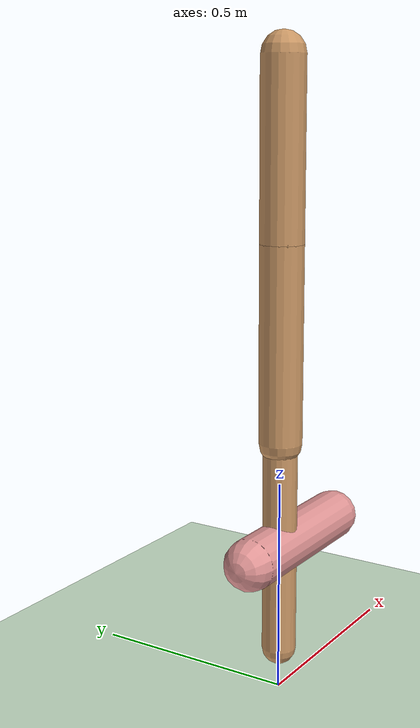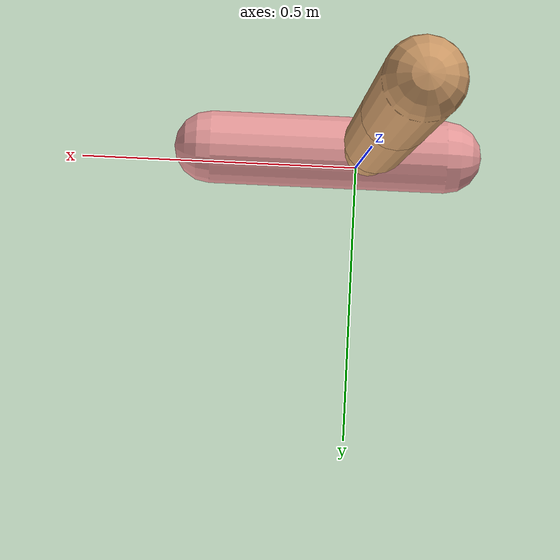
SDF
<?xml version="1.0"?>
<sdf version="1.8">
  <world name="hopper">

    <physics name="fast" type="ignored">
      <!-- 10 ms step (Hopper-v5 uses 2 ms × 4 frame_skip = 8 ms; 10 ms is close enough) -->
      <max_step_size>0.01</max_step_size>
      <real_time_update_rate>0</real_time_update_rate>
    </physics>

    <plugin filename="gz-sim-physics-system"           name="gz::sim::systems::Physics"/>
    <plugin filename="gz-sim-contact-system"           name="gz::sim::systems::Contact"/>
    <plugin filename="gz-sim-scene-broadcaster-system" name="gz::sim::systems::SceneBroadcaster"/>
    <plugin filename="gz-sim-user-commands-system"     name="gz::sim::systems::UserCommands"/>

    <light name="sun" type="directional">
      <cast_shadows>true</cast_shadows>
      <pose>0 0 10 0 0 0</pose>
      <diffuse>0.8 0.8 0.8 1</diffuse>
      <specular>0.2 0.2 0.2 1</specular>
      <attenuation><range>1000</range><constant>0.9</constant><linear>0.01</linear><quadratic>0.001</quadratic></attenuation>
      <direction>-0.5 0.1 -0.9</direction>
    </light>

    <model name="ground_plane">
      <static>true</static>
      <link name="link">
        <collision name="collision">
          <geometry><plane><normal>0 0 1</normal><size>100 100</size></plane></geometry>
          <surface><friction><ode><mu>1.0</mu><mu2>1.0</mu2></ode></friction></surface>
        </collision>
        <visual name="visual">
          <geometry><plane><normal>0 0 1</normal><size>100 100</size></plane></geometry>
          <material><ambient>0.8 0.9 0.8 1</ambient><diffuse>0.8 0.9 0.8 1</diffuse></material>
        </visual>
      </link>
    </model>

    <!--
      Hopper model: torso starts at z=1.25 m (matching MuJoCo initial state).
      All joints at 0 → hopper falls, lands, then learns to hop.
    -->
    <model name="hopper">
      <pose>0 0 1.25 0 0 0</pose>

      <link name="torso">
        <inertial>
          <mass>3.67</mass>
          <inertia>
            <ixx>0.0512</ixx><ixy>0</ixy><ixz>0</ixz>
            <iyy>0.0512</iyy><iyz>0</iyz>
            <izz>0.00459</izz>
          </inertia>
        </inertial>
        <collision name="torso_collision">
          <geometry><capsule><radius>0.05</radius><length>0.4</length></capsule></geometry>
          <surface><friction><ode><mu>0.9</mu></ode></friction></surface>
        </collision>
        <visual name="torso_visual">
          <geometry><capsule><radius>0.05</radius><length>0.4</length></capsule></geometry>
          <material><diffuse>0.8 0.6 0.4 1</diffuse><ambient>0.8 0.6 0.4 1</ambient></material>
        </visual>
      </link>

      <joint name="thigh_joint" type="revolute">
        <pose relative_to="torso">0 0 -0.2 0 0 0</pose>
        <parent>torso</parent>
        <child>thigh</child>
        <axis>
          <xyz>0 -1 0</xyz>
          <limit><lower>-2.618</lower><upper>0</upper><effort>200</effort><velocity>100</velocity></limit>
          <dynamics><damping>1.0</damping><friction>0.0</friction></dynamics>
        </axis>
      </joint>

      <link name="thigh">
        <pose relative_to="thigh_joint">0 0 0 0 0 0</pose>
        <inertial>
          <pose>0 0 -0.225 0 0 0</pose>
          <mass>4.06</mass>
          <inertia>
            <ixx>0.0711</ixx><ixy>0</ixy><ixz>0</ixz>
            <iyy>0.0711</iyy><iyz>0</iyz>
            <izz>0.00508</izz>
          </inertia>
        </inertial>
        <collision name="thigh_collision">
          <pose>0 0 -0.225 0 0 0</pose>
          <geometry><capsule><radius>0.05</radius><length>0.45</length></capsule></geometry>
          <surface><friction><ode><mu>0.9</mu></ode></friction></surface>
        </collision>
        <visual name="thigh_visual">
          <pose>0 0 -0.225 0 0 0</pose>
          <geometry><capsule><radius>0.05</radius><length>0.45</length></capsule></geometry>
          <material><diffuse>0.8 0.6 0.4 1</diffuse><ambient>0.8 0.6 0.4 1</ambient></material>
        </visual>
      </link>

      <joint name="leg_joint" type="revolute">
        <pose relative_to="thigh">0 0 -0.45 0 0 0</pose>
        <parent>thigh</parent>
        <child>leg</child>
        <axis>
          <xyz>0 -1 0</xyz>
          <limit><lower>-2.618</lower><upper>0</upper><effort>200</effort><velocity>100</velocity></limit>
          <dynamics><damping>1.0</damping><friction>0.0</friction></dynamics>
        </axis>
      </joint>

      <link name="leg">
        <pose relative_to="leg_joint">0 0 0 0 0 0</pose>
        <inertial>
          <pose>0 0 -0.25 0 0 0</pose>
          <mass>2.78</mass>
          <inertia>
            <ixx>0.0590</ixx><ixy>0</ixy><ixz>0</ixz>
            <iyy>0.0590</iyy><iyz>0</iyz>
            <izz>0.00222</izz>
          </inertia>
        </inertial>
        <collision name="leg_collision">
          <pose>0 0 -0.25 0 0 0</pose>
          <geometry><capsule><radius>0.04</radius><length>0.5</length></capsule></geometry>
          <surface><friction><ode><mu>0.9</mu></ode></friction></surface>
        </collision>
        <visual name="leg_visual">
          <pose>0 0 -0.25 0 0 0</pose>
          <geometry><capsule><radius>0.04</radius><length>0.5</length></capsule></geometry>
          <material><diffuse>0.8 0.6 0.4 1</diffuse><ambient>0.8 0.6 0.4 1</ambient></material>
        </visual>
      </link>

      <joint name="foot_joint" type="revolute">
        <pose relative_to="leg">0 0 -0.25 0 0 0</pose>
        <parent>leg</parent>
        <child>foot</child>
        <axis>
          <xyz>0 -1 0</xyz>
          <limit><lower>-0.7854</lower><upper>0.7854</upper><effort>200</effort><velocity>100</velocity></limit>
          <dynamics><damping>1.0</damping><friction>0.0</friction></dynamics>
        </axis>
      </joint>

      <link name="foot">
        <pose relative_to="foot_joint">0 0 0 0 0 0</pose>
        <inertial>
          <pose>0.065 0 0 0 0 0</pose>
          <mass>5.31</mass>
          <inertia>
            <ixx>0.00956</ixx><ixy>0</ixy><ixz>0</ixz>
            <iyy>0.07213</iyy><iyz>0</iyz>
            <izz>0.07213</izz>
          </inertia>
        </inertial>
        <collision name="foot_collision">
          <pose>0.065 0 0 0 1.5708 0</pose>
          <geometry><capsule><radius>0.06</radius><length>0.39</length></capsule></geometry>
          <surface>
            <friction><ode><mu>2.0</mu><mu2>2.0</mu2></ode></friction>
          </surface>
        </collision>
        <visual name="foot_visual">
          <pose>0.065 0 0 0 1.5708 0</pose>
          <geometry><capsule><radius>0.06</radius><length>0.39</length></capsule></geometry>
          <material><diffuse>0.9 0.6 0.6 1</diffuse><ambient>0.9 0.6 0.6 1</ambient></material>
        </visual>
      </link>

      <plugin filename="gz-sim-joint-controller-system" name="gz::sim::systems::JointController">
        <joint_name>thigh_joint</joint_name>
        <use_force_commands>true</use_force_commands>
        <cmd_max>200</cmd_max><cmd_min>-200</cmd_min>
      </plugin>
      <plugin filename="gz-sim-joint-controller-system" name="gz::sim::systems::JointController">
        <joint_name>leg_joint</joint_name>
        <use_force_commands>true</use_force_commands>
        <cmd_max>200</cmd_max><cmd_min>-200</cmd_min>
      </plugin>
      <plugin filename="gz-sim-joint-controller-system" name="gz::sim::systems::JointController">
        <joint_name>foot_joint</joint_name>
        <use_force_commands>true</use_force_commands>
        <cmd_max>200</cmd_max><cmd_min>-200</cmd_min>
      </plugin>

      <plugin filename="gz-sim-joint-state-publisher-system" name="gz::sim::systems::JointStatePublisher">
        <joint_name>thigh_joint</joint_name>
        <joint_name>leg_joint</joint_name>
        <joint_name>foot_joint</joint_name>
      </plugin>
    </model>

  </world>
</sdf>
